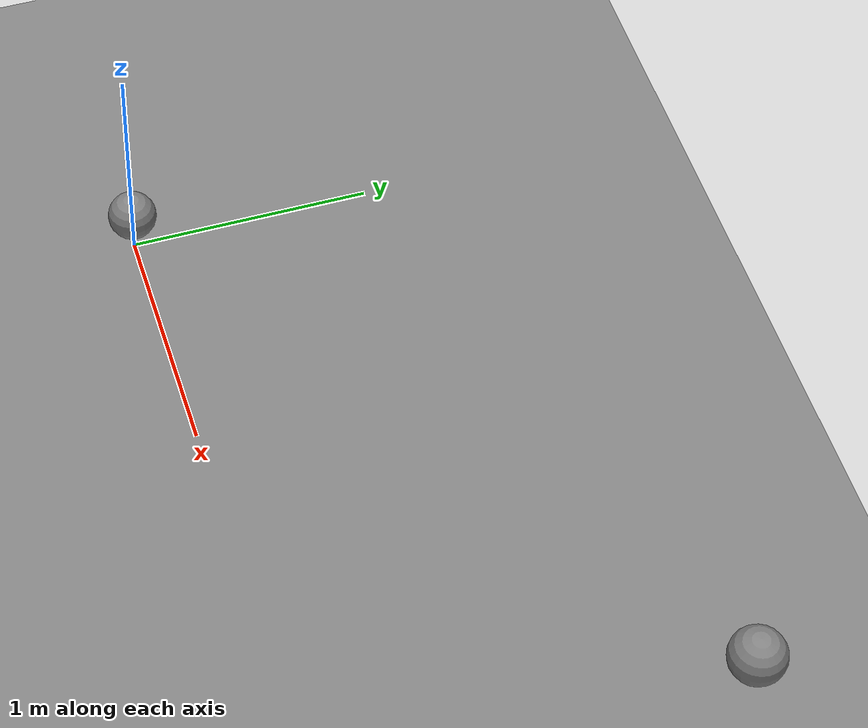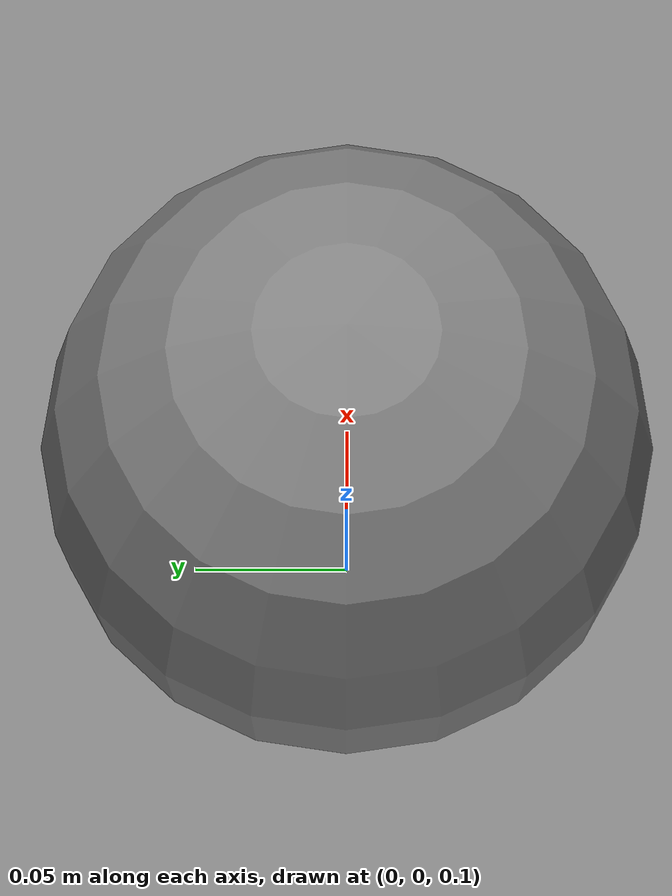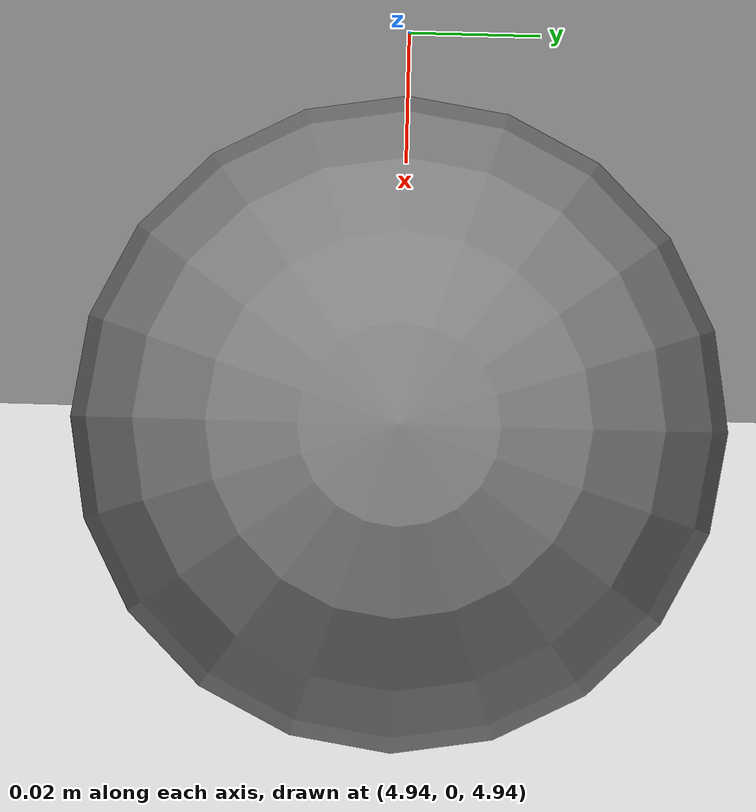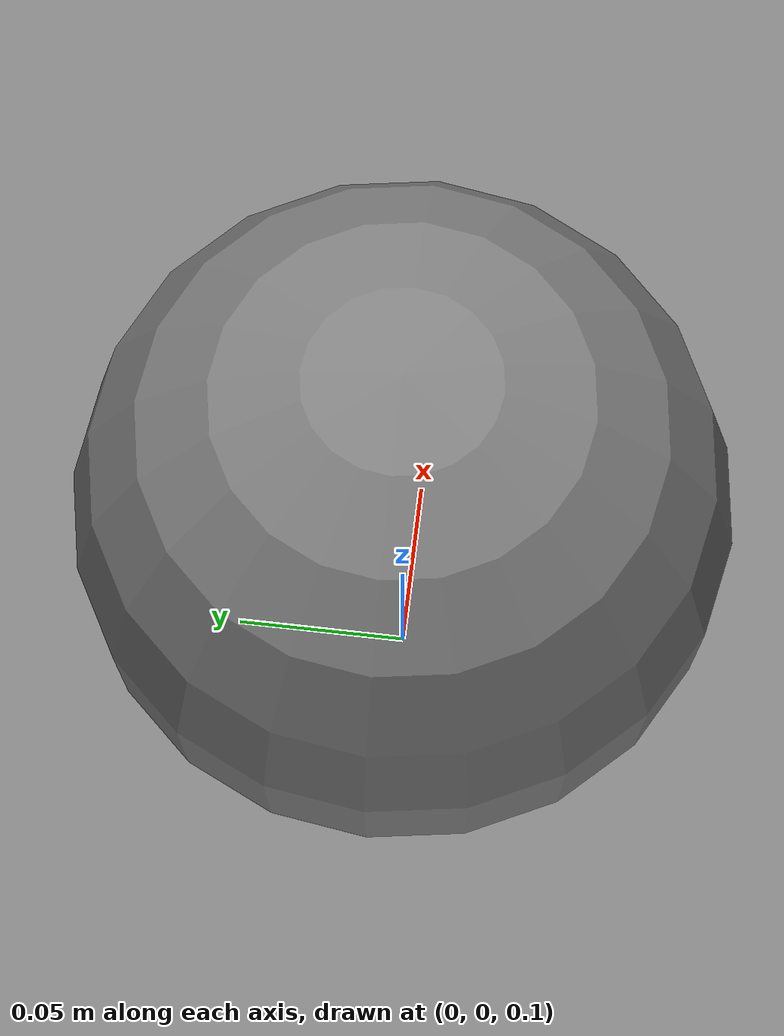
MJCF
<mujoco>
      <option gravity="0 0 -9.81" timestep="0.002" sleep_tolerance="0.1">
        <flag sleep="enable"/>
      </option>
      <worldbody>
        <geom type="plane" size="5 5 0.1" solref="0.005 1.5"/>
        <body name="sleeper" pos="0 0 0.2">
          <freejoint/>
          <geom type="sphere" size="0.1" mass="1.0" solref="0.005 1.5"/>
        </body>
        <body name="awake" pos="5 0 5">
          <freejoint/>
          <geom type="sphere" size="0.05" mass="0.01"/>
        </body>
      </worldbody>
      <sensor>
        <subtreelinvel body="world"/>
      </sensor>
    </mujoco>
